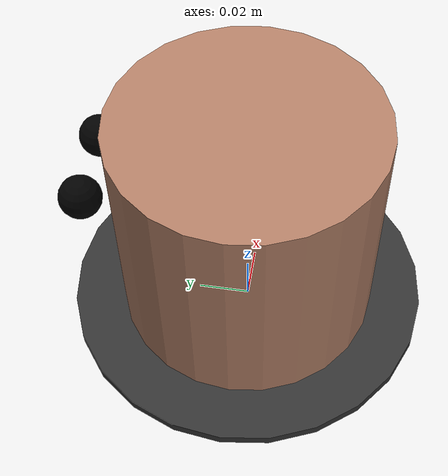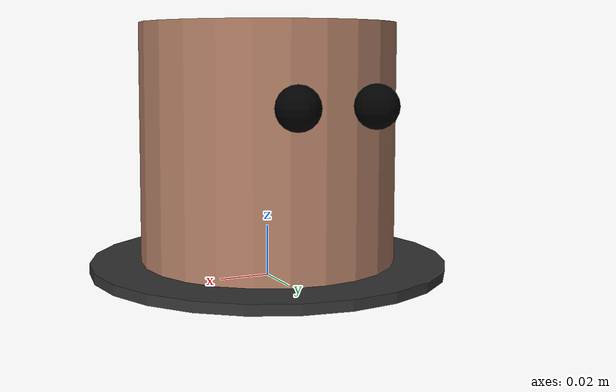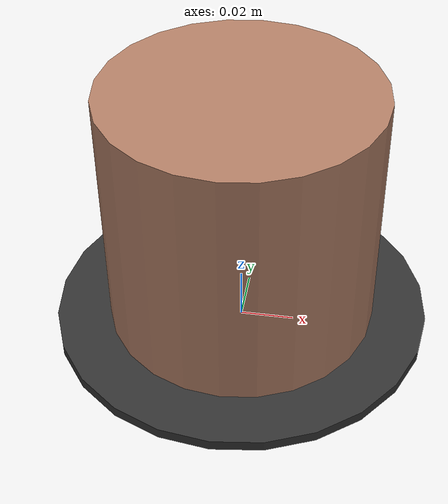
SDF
<?xml version="1.6"?>
<sdf version="1.7">
  <model name="mole_unit">

    <!-- Socket welded to the board -->
    <link name="socket">
      <inertial>
        <mass>0.5</mass>
        <inertia>
          <ixx>1e-4</ixx><iyy>1e-4</iyy><izz>1e-4</izz>
        </inertia>
      </inertial>

      <!-- Decorative ring around mole hole -->
      <visual name="socket_ring">
        <pose>0 0 0.005 0 0 0</pose>
        <geometry>
          <cylinder>
            <radius>0.07</radius>
            <length>0.004</length>
          </cylinder>
        </geometry>
        <material>
          <ambient>0.1 0.1 0.1 1</ambient>
          <diffuse>0.2 0.2 0.2 1</diffuse>
        </material>
      </visual>

    </link>

    <!-- Moving mole -->
    <link name="mole">
      <inertial>
        <mass>0.2</mass>
        <inertia>
          <ixx>1e-4</ixx><iyy>1e-4</iyy><izz>1e-4</izz>
        </inertia>
      </inertial>

      <!-- body shifted upward by 5 cm -->
      <visual name="body">
        <pose>0 0 0.05 0 0 0</pose>
        <geometry>
          <cylinder>
            <radius>0.05</radius>
            <length>0.10</length>
          </cylinder>
        </geometry>
        <material>
          <diffuse>0.7 0.5 0.4 1</diffuse>   <!-- Mole brown -->
          <ambient>0.4 0.3 0.2 1</ambient>
        </material>
      </visual>

      <!-- collision shifted upward same amount -->
      <collision name="body_collision">
        <pose>0 0 0.05 0 0 0</pose>
        <geometry>
          <cylinder>
            <radius>0.05</radius>
            <length>0.10</length>
          </cylinder>
        </geometry>
      </collision>

      <!-- Eyes relative to shifted body -->
      <visual name="eye_left">
        <pose>-0.015 0.058 0.07 0 0 0</pose>
        <geometry><sphere><radius>0.008</radius></sphere></geometry>
        <material><diffuse>0 0 0 1</diffuse></material>
      </visual>

      <visual name="eye_right">
        <pose>0.015 0.058 0.07 0 0 0</pose>
        <geometry><sphere><radius>0.008</radius></sphere></geometry>
        <material><diffuse>0 0 0 1</diffuse></material>
      </visual>

    </link>

    <!-- Prismatic joint (force-actuated via HardwareStation) -->
    <joint name="mole_slider" type="prismatic">
      <parent>socket</parent>
      <child>mole</child>
      <axis>
        <xyz>0 0 1</xyz>
        <limit>
          <lower>0.0</lower>
          <upper>0.2</upper>
          <effort>200</effort>
        </limit>
        <dynamics>
          <damping>5</damping>
        </dynamics>
      </axis>
    </joint>

    <static>false</static>
  </model>
</sdf>
